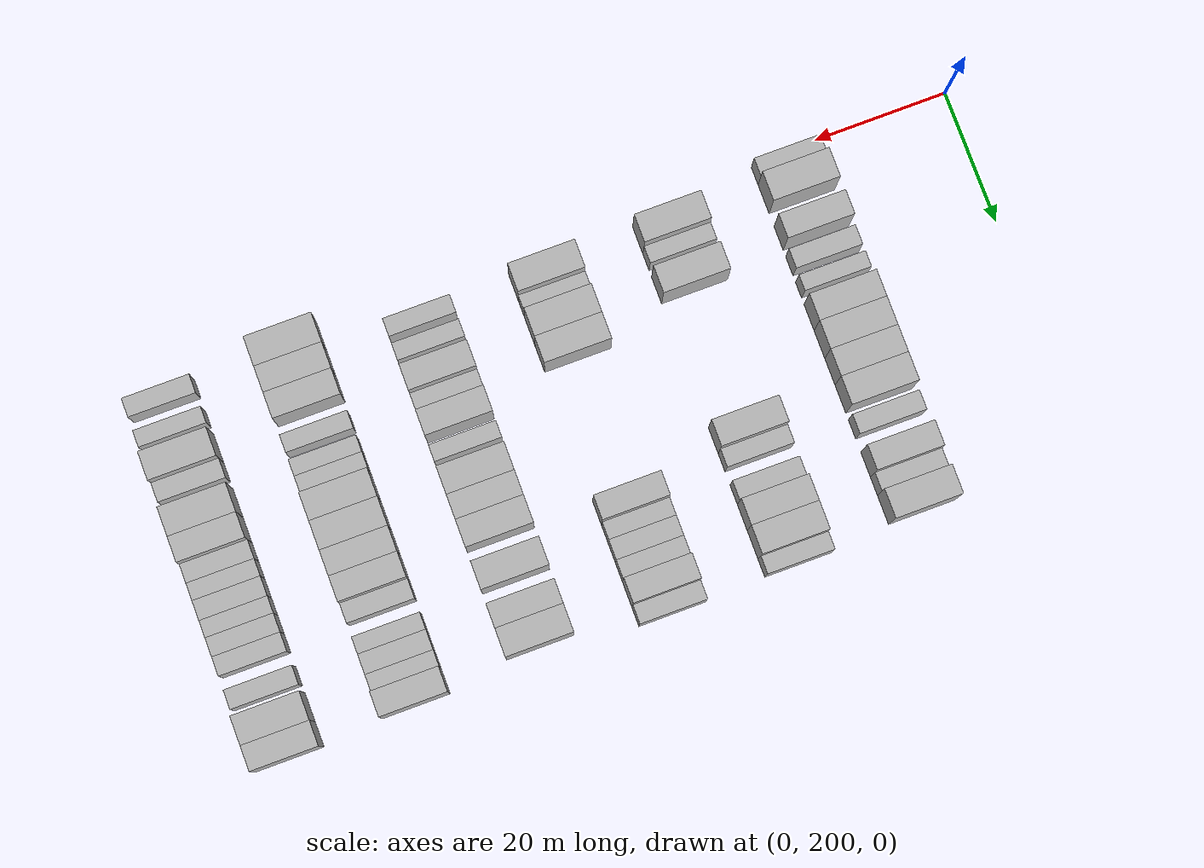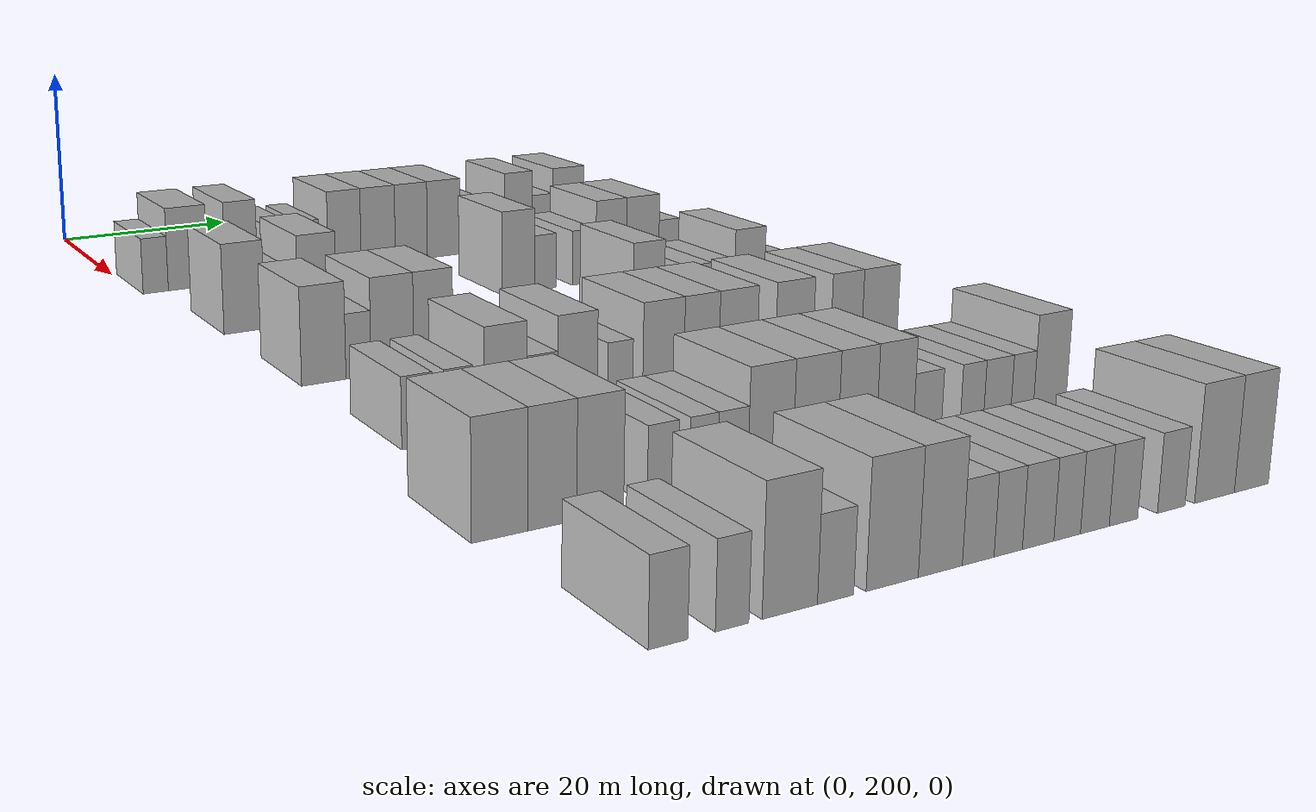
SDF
<sdf version="1.6">
 <world name="default">
  <model name="building_137">
   <static>1</static>
   <pose>25.0000 201.9260 0 0.000000 0.000000 0.000000</pose>
   <link name="link">
    <pose>0 0 3.00 0 0 0</pose>
    <collision name="collision"><geometry><box><size>10.0000 2.7533 6.0000</size></box></geometry></collision>
    <visual name="visual">
     <cast_shadows>0</cast_shadows>
     <geometry><box><size>10.0000 2.7533 6.0000</size></box></geometry>
     <material>
      <script>
       <uri>model://HANNAS_wall/materials/scripts</uri>
       <uri>model://HANNAS_wall/materials/textures</uri>
       <name>vrc/HANNAS_wall</name>
      </script>
     </material>
    </visual>
   </link>
  </model>
  <model name="building_138">
   <static>1</static>
   <pose>25.0000 205.5140 0 0.000000 0.000000 0.000000</pose>
   <link name="link">
    <pose>0 0 4.50 0 0 0</pose>
    <collision name="collision"><geometry><box><size>10.0000 4.4226 9.0000</size></box></geometry></collision>
    <visual name="visual">
     <cast_shadows>0</cast_shadows>
     <geometry><box><size>10.0000 4.4226 9.0000</size></box></geometry>
     <material>
      <script>
       <uri>model://HANNAS_wall/materials/scripts</uri>
       <uri>model://HANNAS_wall/materials/textures</uri>
       <name>vrc/HANNAS_wall</name>
      </script>
     </material>
    </visual>
   </link>
  </model>
  <model name="building_139">
   <static>1</static>
   <pose>25.0000 211.5642 0 0.000000 0.000000 0.000000</pose>
   <link name="link">
    <pose>0 0 4.50 0 0 0</pose>
    <collision name="collision"><geometry><box><size>10.0000 3.6777 9.0000</size></box></geometry></collision>
    <visual name="visual">
     <cast_shadows>0</cast_shadows>
     <geometry><box><size>10.0000 3.6777 9.0000</size></box></geometry>
     <material>
      <script>
       <uri>model://HANNAS_wall/materials/scripts</uri>
       <uri>model://HANNAS_wall/materials/textures</uri>
       <name>vrc/HANNAS_wall</name>
      </script>
     </material>
    </visual>
   </link>
  </model>
  <model name="building_140">
   <static>1</static>
   <pose>25.0000 215.8800 0 0.000000 0.000000 0.000000</pose>
   <link name="link">
    <pose>0 0 3.00 0 0 0</pose>
    <collision name="collision"><geometry><box><size>10.0000 2.9540 6.0000</size></box></geometry></collision>
    <visual name="visual">
     <cast_shadows>0</cast_shadows>
     <geometry><box><size>10.0000 2.9540 6.0000</size></box></geometry>
     <material>
      <script>
       <uri>model://HANNAS_wall/materials/scripts</uri>
       <uri>model://HANNAS_wall/materials/textures</uri>
       <name>vrc/HANNAS_wall</name>
      </script>
     </material>
    </visual>
   </link>
  </model>
  <model name="building_141">
   <static>1</static>
   <pose>25.0000 219.5652 0 0.000000 0.000000 0.000000</pose>
   <link name="link">
    <pose>0 0 3.00 0 0 0</pose>
    <collision name="collision"><geometry><box><size>10.0000 2.4164 6.0000</size></box></geometry></collision>
    <visual name="visual">
     <cast_shadows>0</cast_shadows>
     <geometry><box><size>10.0000 2.4164 6.0000</size></box></geometry>
     <material>
      <script>
       <uri>model://HANNAS_wall/materials/scripts</uri>
       <uri>model://HANNAS_wall/materials/textures</uri>
       <name>vrc/HANNAS_wall</name>
      </script>
     </material>
    </visual>
   </link>
  </model>
  <model name="building_142">
   <static>1</static>
   <pose>25.0000 223.7878 0 0.000000 0.000000 0.000000</pose>
   <link name="link">
    <pose>0 0 4.50 0 0 0</pose>
    <collision name="collision"><geometry><box><size>10.0000 4.0288 9.0000</size></box></geometry></collision>
    <visual name="visual">
     <cast_shadows>0</cast_shadows>
     <geometry><box><size>10.0000 4.0288 9.0000</size></box></geometry>
     <material>
      <script>
       <uri>model://HANNAS_wall/materials/scripts</uri>
       <uri>model://HANNAS_wall/materials/textures</uri>
       <name>vrc/HANNAS_wall</name>
      </script>
     </material>
    </visual>
   </link>
  </model>
  <model name="building_143">
   <static>1</static>
   <pose>25.0000 227.9310 0 0.000000 0.000000 0.000000</pose>
   <link name="link">
    <pose>0 0 4.50 0 0 0</pose>
    <collision name="collision"><geometry><box><size>10.0000 4.2576 9.0000</size></box></geometry></collision>
    <visual name="visual">
     <cast_shadows>0</cast_shadows>
     <geometry><box><size>10.0000 4.2576 9.0000</size></box></geometry>
     <material>
      <script>
       <uri>model://HANNAS_wall/materials/scripts</uri>
       <uri>model://HANNAS_wall/materials/textures</uri>
       <name>vrc/HANNAS_wall</name>
      </script>
     </material>
    </visual>
   </link>
  </model>
  <model name="building_144">
   <static>1</static>
   <pose>25.0000 232.0990 0 0.000000 0.000000 0.000000</pose>
   <link name="link">
    <pose>0 0 4.50 0 0 0</pose>
    <collision name="collision"><geometry><box><size>10.0000 4.0784 9.0000</size></box></geometry></collision>
    <visual name="visual">
     <cast_shadows>0</cast_shadows>
     <geometry><box><size>10.0000 4.0784 9.0000</size></box></geometry>
     <material>
      <script>
       <uri>model://HANNAS_wall/materials/scripts</uri>
       <uri>model://HANNAS_wall/materials/textures</uri>
       <name>vrc/HANNAS_wall</name>
      </script>
     </material>
    </visual>
   </link>
  </model>
  <model name="building_145">
   <static>1</static>
   <pose>25.0000 236.2634 0 0.000000 0.000000 0.000000</pose>
   <link name="link">
    <pose>0 0 4.50 0 0 0</pose>
    <collision name="collision"><geometry><box><size>10.0000 4.2503 9.0000</size></box></geometry></collision>
    <visual name="visual">
     <cast_shadows>0</cast_shadows>
     <geometry><box><size>10.0000 4.2503 9.0000</size></box></geometry>
     <material>
      <script>
       <uri>model://HANNAS_wall/materials/scripts</uri>
       <uri>model://HANNAS_wall/materials/textures</uri>
       <name>vrc/HANNAS_wall</name>
      </script>
     </material>
    </visual>
   </link>
  </model>
  <model name="building_146">
   <static>1</static>
   <pose>25.0000 240.8515 0 0.000000 0.000000 0.000000</pose>
   <link name="link">
    <pose>0 0 3.00 0 0 0</pose>
    <collision name="collision"><geometry><box><size>10.0000 2.9259 6.0000</size></box></geometry></collision>
    <visual name="visual">
     <cast_shadows>0</cast_shadows>
     <geometry><box><size>10.0000 2.9259 6.0000</size></box></geometry>
     <material>
      <script>
       <uri>model://HANNAS_wall/materials/scripts</uri>
       <uri>model://HANNAS_wall/materials/textures</uri>
       <name>vrc/HANNAS_wall</name>
      </script>
     </material>
    </visual>
   </link>
  </model>
  <model name="building_147">
   <static>1</static>
   <pose>25.0000 246.2009 0 0.000000 0.000000 0.000000</pose>
   <link name="link">
    <pose>0 0 4.50 0 0 0</pose>
    <collision name="collision"><geometry><box><size>10.0000 3.7731 9.0000</size></box></geometry></collision>
    <visual name="visual">
     <cast_shadows>0</cast_shadows>
     <geometry><box><size>10.0000 3.7731 9.0000</size></box></geometry>
     <material>
      <script>
       <uri>model://HANNAS_wall/materials/scripts</uri>
       <uri>model://HANNAS_wall/materials/textures</uri>
       <name>vrc/HANNAS_wall</name>
      </script>
     </material>
    </visual>
   </link>
  </model>
  <model name="building_148">
   <static>1</static>
   <pose>25.0000 249.4696 0 0.000000 0.000000 0.000000</pose>
   <link name="link">
    <pose>0 0 3.00 0 0 0</pose>
    <collision name="collision"><geometry><box><size>10.0000 2.7642 6.0000</size></box></geometry></collision>
    <visual name="visual">
     <cast_shadows>0</cast_shadows>
     <geometry><box><size>10.0000 2.7642 6.0000</size></box></geometry>
     <material>
      <script>
       <uri>model://HANNAS_wall/materials/scripts</uri>
       <uri>model://HANNAS_wall/materials/textures</uri>
       <name>vrc/HANNAS_wall</name>
      </script>
     </material>
    </visual>
   </link>
  </model>
  <model name="building_149">
   <static>1</static>
   <pose>25.0000 253.0398 0 0.000000 0.000000 0.000000</pose>
   <link name="link">
    <pose>0 0 4.50 0 0 0</pose>
    <collision name="collision"><geometry><box><size>10.0000 4.3762 9.0000</size></box></geometry></collision>
    <visual name="visual">
     <cast_shadows>0</cast_shadows>
     <geometry><box><size>10.0000 4.3762 9.0000</size></box></geometry>
     <material>
      <script>
       <uri>model://HANNAS_wall/materials/scripts</uri>
       <uri>model://HANNAS_wall/materials/textures</uri>
       <name>vrc/HANNAS_wall</name>
      </script>
     </material>
    </visual>
   </link>
  </model>
  <model name="building_309">
   <static>1</static>
   <pose>44.0000 204.9392 0 0.000000 0.000000 0.000000</pose>
   <link name="link">
    <pose>0 0 4.50 0 0 0</pose>
    <collision name="collision"><geometry><box><size>10.0000 4.1954 9.0000</size></box></geometry></collision>
    <visual name="visual">
     <cast_shadows>0</cast_shadows>
     <geometry><box><size>10.0000 4.1954 9.0000</size></box></geometry>
     <material>
      <script>
       <uri>model://HANNAS_wall/materials/scripts</uri>
       <uri>model://HANNAS_wall/materials/textures</uri>
       <name>vrc/HANNAS_wall</name>
      </script>
     </material>
    </visual>
   </link>
  </model>
  <model name="building_310">
   <static>1</static>
   <pose>44.0000 208.3051 0 0.000000 0.000000 0.000000</pose>
   <link name="link">
    <pose>0 0 3.00 0 0 0</pose>
    <collision name="collision"><geometry><box><size>10.0000 2.5364 6.0000</size></box></geometry></collision>
    <visual name="visual">
     <cast_shadows>0</cast_shadows>
     <geometry><box><size>10.0000 2.5364 6.0000</size></box></geometry>
     <material>
      <script>
       <uri>model://HANNAS_wall/materials/scripts</uri>
       <uri>model://HANNAS_wall/materials/textures</uri>
       <name>vrc/HANNAS_wall</name>
      </script>
     </material>
    </visual>
   </link>
  </model>
  <model name="building_311">
   <static>1</static>
   <pose>44.0000 212.6256 0 0.000000 0.000000 0.000000</pose>
   <link name="link">
    <pose>0 0 4.50 0 0 0</pose>
    <collision name="collision"><geometry><box><size>10.0000 4.1047 9.0000</size></box></geometry></collision>
    <visual name="visual">
     <cast_shadows>0</cast_shadows>
     <geometry><box><size>10.0000 4.1047 9.0000</size></box></geometry>
     <material>
      <script>
       <uri>model://HANNAS_wall/materials/scripts</uri>
       <uri>model://HANNAS_wall/materials/textures</uri>
       <name>vrc/HANNAS_wall</name>
      </script>
     </material>
    </visual>
   </link>
  </model>
  <model name="building_312">
   <static>1</static>
   <pose>44.0000 235.6013 0 0.000000 0.000000 0.000000</pose>
   <link name="link">
    <pose>0 0 4.50 0 0 0</pose>
    <collision name="collision"><geometry><box><size>10.0000 3.9489 9.0000</size></box></geometry></collision>
    <visual name="visual">
     <cast_shadows>0</cast_shadows>
     <geometry><box><size>10.0000 3.9489 9.0000</size></box></geometry>
     <material>
      <script>
       <uri>model://HANNAS_wall/materials/scripts</uri>
       <uri>model://HANNAS_wall/materials/textures</uri>
       <name>vrc/HANNAS_wall</name>
      </script>
     </material>
    </visual>
   </link>
  </model>
  <model name="building_313">
   <static>1</static>
   <pose>44.0000 238.9459 0 0.000000 0.000000 0.000000</pose>
   <link name="link">
    <pose>0 0 3.00 0 0 0</pose>
    <collision name="collision"><geometry><box><size>10.0000 2.7405 6.0000</size></box></geometry></collision>
    <visual name="visual">
     <cast_shadows>0</cast_shadows>
     <geometry><box><size>10.0000 2.7405 6.0000</size></box></geometry>
     <material>
      <script>
       <uri>model://HANNAS_wall/materials/scripts</uri>
       <uri>model://HANNAS_wall/materials/textures</uri>
       <name>vrc/HANNAS_wall</name>
      </script>
     </material>
    </visual>
   </link>
  </model>
  <model name="building_314">
   <static>1</static>
   <pose>44.0000 243.8032 0 0.000000 0.000000 0.000000</pose>
   <link name="link">
    <pose>0 0 3.00 0 0 0</pose>
    <collision name="collision"><geometry><box><size>10.0000 2.9741 6.0000</size></box></geometry></collision>
    <visual name="visual">
     <cast_shadows>0</cast_shadows>
     <geometry><box><size>10.0000 2.9741 6.0000</size></box></geometry>
     <material>
      <script>
       <uri>model://HANNAS_wall/materials/scripts</uri>
       <uri>model://HANNAS_wall/materials/textures</uri>
       <name>vrc/HANNAS_wall</name>
      </script>
     </material>
    </visual>
   </link>
  </model>
  <model name="building_315">
   <static>1</static>
   <pose>44.0000 247.2576 0 0.000000 0.000000 0.000000</pose>
   <link name="link">
    <pose>0 0 4.50 0 0 0</pose>
    <collision name="collision"><geometry><box><size>10.0000 3.9348 9.0000</size></box></geometry></collision>
    <visual name="visual">
     <cast_shadows>0</cast_shadows>
     <geometry><box><size>10.0000 3.9348 9.0000</size></box></geometry>
     <material>
      <script>
       <uri>model://HANNAS_wall/materials/scripts</uri>
       <uri>model://HANNAS_wall/materials/textures</uri>
       <name>vrc/HANNAS_wall</name>
      </script>
     </material>
    </visual>
   </link>
  </model>
  <model name="building_316">
   <static>1</static>
   <pose>44.0000 251.3628 0 0.000000 0.000000 0.000000</pose>
   <link name="link">
    <pose>0 0 4.50 0 0 0</pose>
    <collision name="collision"><geometry><box><size>10.0000 4.2755 9.0000</size></box></geometry></collision>
    <visual name="visual">
     <cast_shadows>0</cast_shadows>
     <geometry><box><size>10.0000 4.2755 9.0000</size></box></geometry>
     <material>
      <script>
       <uri>model://HANNAS_wall/materials/scripts</uri>
       <uri>model://HANNAS_wall/materials/textures</uri>
       <name>vrc/HANNAS_wall</name>
      </script>
     </material>
    </visual>
   </link>
  </model>
  <model name="building_317">
   <static>1</static>
   <pose>44.0000 254.8335 0 0.000000 0.000000 0.000000</pose>
   <link name="link">
    <pose>0 0 3.00 0 0 0</pose>
    <collision name="collision"><geometry><box><size>10.0000 2.6660 6.0000</size></box></geometry></collision>
    <visual name="visual">
     <cast_shadows>0</cast_shadows>
     <geometry><box><size>10.0000 2.6660 6.0000</size></box></geometry>
     <material>
      <script>
       <uri>model://HANNAS_wall/materials/scripts</uri>
       <uri>model://HANNAS_wall/materials/textures</uri>
       <name>vrc/HANNAS_wall</name>
      </script>
     </material>
    </visual>
   </link>
  </model>
  <model name="building_474">
   <static>1</static>
   <pose>63.0000 205.3788 0 0.000000 0.000000 0.000000</pose>
   <link name="link">
    <pose>0 0 4.50 0 0 0</pose>
    <collision name="collision"><geometry><box><size>10.0000 4.2287 9.0000</size></box></geometry></collision>
    <visual name="visual">
     <cast_shadows>0</cast_shadows>
     <geometry><box><size>10.0000 4.2287 9.0000</size></box></geometry>
     <material>
      <script>
       <uri>model://HANNAS_wall/materials/scripts</uri>
       <uri>model://HANNAS_wall/materials/textures</uri>
       <name>vrc/HANNAS_wall</name>
      </script>
     </material>
    </visual>
   </link>
  </model>
  <model name="building_475">
   <static>1</static>
   <pose>63.0000 208.7192 0 0.000000 0.000000 0.000000</pose>
   <link name="link">
    <pose>0 0 3.00 0 0 0</pose>
    <collision name="collision"><geometry><box><size>10.0000 2.4522 6.0000</size></box></geometry></collision>
    <visual name="visual">
     <cast_shadows>0</cast_shadows>
     <geometry><box><size>10.0000 2.4522 6.0000</size></box></geometry>
     <material>
      <script>
       <uri>model://HANNAS_wall/materials/scripts</uri>
       <uri>model://HANNAS_wall/materials/textures</uri>
       <name>vrc/HANNAS_wall</name>
      </script>
     </material>
    </visual>
   </link>
  </model>
  <model name="building_476">
   <static>1</static>
   <pose>63.0000 212.0709 0 0.000000 0.000000 0.000000</pose>
   <link name="link">
    <pose>0 0 4.50 0 0 0</pose>
    <collision name="collision"><geometry><box><size>10.0000 4.2512 9.0000</size></box></geometry></collision>
    <visual name="visual">
     <cast_shadows>0</cast_shadows>
     <geometry><box><size>10.0000 4.2512 9.0000</size></box></geometry>
     <material>
      <script>
       <uri>model://HANNAS_wall/materials/scripts</uri>
       <uri>model://HANNAS_wall/materials/textures</uri>
       <name>vrc/HANNAS_wall</name>
      </script>
     </material>
    </visual>
   </link>
  </model>
  <model name="building_477">
   <static>1</static>
   <pose>63.0000 216.1887 0 0.000000 0.000000 0.000000</pose>
   <link name="link">
    <pose>0 0 4.50 0 0 0</pose>
    <collision name="collision"><geometry><box><size>10.0000 3.9843 9.0000</size></box></geometry></collision>
    <visual name="visual">
     <cast_shadows>0</cast_shadows>
     <geometry><box><size>10.0000 3.9843 9.0000</size></box></geometry>
     <material>
      <script>
       <uri>model://HANNAS_wall/materials/scripts</uri>
       <uri>model://HANNAS_wall/materials/textures</uri>
       <name>vrc/HANNAS_wall</name>
      </script>
     </material>
    </visual>
   </link>
  </model>
  <model name="building_478">
   <static>1</static>
   <pose>63.0000 239.6455 0 0.000000 0.000000 0.000000</pose>
   <link name="link">
    <pose>0 0 4.50 0 0 0</pose>
    <collision name="collision"><geometry><box><size>10.0000 3.6432 9.0000</size></box></geometry></collision>
    <visual name="visual">
     <cast_shadows>0</cast_shadows>
     <geometry><box><size>10.0000 3.6432 9.0000</size></box></geometry>
     <material>
      <script>
       <uri>model://HANNAS_wall/materials/scripts</uri>
       <uri>model://HANNAS_wall/materials/textures</uri>
       <name>vrc/HANNAS_wall</name>
      </script>
     </material>
    </visual>
   </link>
  </model>
  <model name="building_479">
   <static>1</static>
   <pose>63.0000 242.7793 0 0.000000 0.000000 0.000000</pose>
   <link name="link">
    <pose>0 0 3.00 0 0 0</pose>
    <collision name="collision"><geometry><box><size>10.0000 2.6244 6.0000</size></box></geometry></collision>
    <visual name="visual">
     <cast_shadows>0</cast_shadows>
     <geometry><box><size>10.0000 2.6244 6.0000</size></box></geometry>
     <material>
      <script>
       <uri>model://HANNAS_wall/materials/scripts</uri>
       <uri>model://HANNAS_wall/materials/textures</uri>
       <name>vrc/HANNAS_wall</name>
      </script>
     </material>
    </visual>
   </link>
  </model>
  <model name="building_480">
   <static>1</static>
   <pose>63.0000 245.5914 0 0.000000 0.000000 0.000000</pose>
   <link name="link">
    <pose>0 0 3.00 0 0 0</pose>
    <collision name="collision"><geometry><box><size>10.0000 2.9997 6.0000</size></box></geometry></collision>
    <visual name="visual">
     <cast_shadows>0</cast_shadows>
     <geometry><box><size>10.0000 2.9997 6.0000</size></box></geometry>
     <material>
      <script>
       <uri>model://HANNAS_wall/materials/scripts</uri>
       <uri>model://HANNAS_wall/materials/textures</uri>
       <name>vrc/HANNAS_wall</name>
      </script>
     </material>
    </visual>
   </link>
  </model>
  <model name="building_481">
   <static>1</static>
   <pose>63.0000 248.5118 0 0.000000 0.000000 0.000000</pose>
   <link name="link">
    <pose>0 0 3.00 0 0 0</pose>
    <collision name="collision"><geometry><box><size>10.0000 2.8411 6.0000</size></box></geometry></collision>
    <visual name="visual">
     <cast_shadows>0</cast_shadows>
     <geometry><box><size>10.0000 2.8411 6.0000</size></box></geometry>
     <material>
      <script>
       <uri>model://HANNAS_wall/materials/scripts</uri>
       <uri>model://HANNAS_wall/materials/textures</uri>
       <name>vrc/HANNAS_wall</name>
      </script>
     </material>
    </visual>
   </link>
  </model>
  <model name="building_482">
   <static>1</static>
   <pose>63.0000 251.8137 0 0.000000 0.000000 0.000000</pose>
   <link name="link">
    <pose>0 0 4.50 0 0 0</pose>
    <collision name="collision"><geometry><box><size>10.0000 3.7629 9.0000</size></box></geometry></collision>
    <visual name="visual">
     <cast_shadows>0</cast_shadows>
     <geometry><box><size>10.0000 3.7629 9.0000</size></box></geometry>
     <material>
      <script>
       <uri>model://HANNAS_wall/materials/scripts</uri>
       <uri>model://HANNAS_wall/materials/textures</uri>
       <name>vrc/HANNAS_wall</name>
      </script>
     </material>
    </visual>
   </link>
  </model>
  <model name="building_483">
   <static>1</static>
   <pose>63.0000 255.1217 0 0.000000 0.000000 0.000000</pose>
   <link name="link">
    <pose>0 0 3.00 0 0 0</pose>
    <collision name="collision"><geometry><box><size>10.0000 2.8530 6.0000</size></box></geometry></collision>
    <visual name="visual">
     <cast_shadows>0</cast_shadows>
     <geometry><box><size>10.0000 2.8530 6.0000</size></box></geometry>
     <material>
      <script>
       <uri>model://HANNAS_wall/materials/scripts</uri>
       <uri>model://HANNAS_wall/materials/textures</uri>
       <name>vrc/HANNAS_wall</name>
      </script>
     </material>
    </visual>
   </link>
  </model>
  <model name="building_650">
   <static>1</static>
   <pose>82.0000 205.3810 0 0.000000 0.000000 0.000000</pose>
   <link name="link">
    <pose>0 0 3.00 0 0 0</pose>
    <collision name="collision"><geometry><box><size>10.0000 2.7140 6.0000</size></box></geometry></collision>
    <visual name="visual">
     <cast_shadows>0</cast_shadows>
     <geometry><box><size>10.0000 2.7140 6.0000</size></box></geometry>
     <material>
      <script>
       <uri>model://HANNAS_wall/materials/scripts</uri>
       <uri>model://HANNAS_wall/materials/textures</uri>
       <name>vrc/HANNAS_wall</name>
      </script>
     </material>
    </visual>
   </link>
  </model>
  <model name="building_651">
   <static>1</static>
   <pose>82.0000 209.0442 0 0.000000 0.000000 0.000000</pose>
   <link name="link">
    <pose>0 0 3.00 0 0 0</pose>
    <collision name="collision"><geometry><box><size>10.0000 2.6124 6.0000</size></box></geometry></collision>
    <visual name="visual">
     <cast_shadows>0</cast_shadows>
     <geometry><box><size>10.0000 2.6124 6.0000</size></box></geometry>
     <material>
      <script>
       <uri>model://HANNAS_wall/materials/scripts</uri>
       <uri>model://HANNAS_wall/materials/textures</uri>
       <name>vrc/HANNAS_wall</name>
      </script>
     </material>
    </visual>
   </link>
  </model>
  <model name="building_652">
   <static>1</static>
   <pose>82.0000 213.3233 0 0.000000 0.000000 0.000000</pose>
   <link name="link">
    <pose>0 0 4.50 0 0 0</pose>
    <collision name="collision"><geometry><box><size>10.0000 3.9457 9.0000</size></box></geometry></collision>
    <visual name="visual">
     <cast_shadows>0</cast_shadows>
     <geometry><box><size>10.0000 3.9457 9.0000</size></box></geometry>
     <material>
      <script>
       <uri>model://HANNAS_wall/materials/scripts</uri>
       <uri>model://HANNAS_wall/materials/textures</uri>
       <name>vrc/HANNAS_wall</name>
      </script>
     </material>
    </visual>
   </link>
  </model>
  <model name="building_653">
   <static>1</static>
   <pose>82.0000 216.7306 0 0.000000 0.000000 0.000000</pose>
   <link name="link">
    <pose>0 0 3.00 0 0 0</pose>
    <collision name="collision"><geometry><box><size>10.0000 2.8688 6.0000</size></box></geometry></collision>
    <visual name="visual">
     <cast_shadows>0</cast_shadows>
     <geometry><box><size>10.0000 2.8688 6.0000</size></box></geometry>
     <material>
      <script>
       <uri>model://HANNAS_wall/materials/scripts</uri>
       <uri>model://HANNAS_wall/materials/textures</uri>
       <name>vrc/HANNAS_wall</name>
      </script>
     </material>
    </visual>
   </link>
  </model>
  <model name="building_654">
   <static>1</static>
   <pose>82.0000 220.0925 0 0.000000 0.000000 0.000000</pose>
   <link name="link">
    <pose>0 0 4.50 0 0 0</pose>
    <collision name="collision"><geometry><box><size>10.0000 3.8549 9.0000</size></box></geometry></collision>
    <visual name="visual">
     <cast_shadows>0</cast_shadows>
     <geometry><box><size>10.0000 3.8549 9.0000</size></box></geometry>
     <material>
      <script>
       <uri>model://HANNAS_wall/materials/scripts</uri>
       <uri>model://HANNAS_wall/materials/textures</uri>
       <name>vrc/HANNAS_wall</name>
      </script>
     </material>
    </visual>
   </link>
  </model>
  <model name="building_655">
   <static>1</static>
   <pose>82.0000 224.2745 0 0.000000 0.000000 0.000000</pose>
   <link name="link">
    <pose>0 0 3.00 0 0 0</pose>
    <collision name="collision"><geometry><box><size>10.0000 2.5092 6.0000</size></box></geometry></collision>
    <visual name="visual">
     <cast_shadows>0</cast_shadows>
     <geometry><box><size>10.0000 2.5092 6.0000</size></box></geometry>
     <material>
      <script>
       <uri>model://HANNAS_wall/materials/scripts</uri>
       <uri>model://HANNAS_wall/materials/textures</uri>
       <name>vrc/HANNAS_wall</name>
      </script>
     </material>
    </visual>
   </link>
  </model>
  <model name="building_656">
   <static>1</static>
   <pose>82.0000 228.6297 0 0.000000 0.000000 0.000000</pose>
   <link name="link">
    <pose>0 0 4.50 0 0 0</pose>
    <collision name="collision"><geometry><box><size>10.0000 4.2011 9.0000</size></box></geometry></collision>
    <visual name="visual">
     <cast_shadows>0</cast_shadows>
     <geometry><box><size>10.0000 4.2011 9.0000</size></box></geometry>
     <material>
      <script>
       <uri>model://HANNAS_wall/materials/scripts</uri>
       <uri>model://HANNAS_wall/materials/textures</uri>
       <name>vrc/HANNAS_wall</name>
      </script>
     </material>
    </visual>
   </link>
  </model>
  <model name="building_657">
   <static>1</static>
   <pose>82.0000 232.5625 0 0.000000 0.000000 0.000000</pose>
   <link name="link">
    <pose>0 0 4.50 0 0 0</pose>
    <collision name="collision"><geometry><box><size>10.0000 3.6646 9.0000</size></box></geometry></collision>
    <visual name="visual">
     <cast_shadows>0</cast_shadows>
     <geometry><box><size>10.0000 3.6646 9.0000</size></box></geometry>
     <material>
      <script>
       <uri>model://HANNAS_wall/materials/scripts</uri>
       <uri>model://HANNAS_wall/materials/textures</uri>
       <name>vrc/HANNAS_wall</name>
      </script>
     </material>
    </visual>
   </link>
  </model>
  <model name="building_658">
   <static>1</static>
   <pose>82.0000 236.4537 0 0.000000 0.000000 0.000000</pose>
   <link name="link">
    <pose>0 0 4.50 0 0 0</pose>
    <collision name="collision"><geometry><box><size>10.0000 4.1177 9.0000</size></box></geometry></collision>
    <visual name="visual">
     <cast_shadows>0</cast_shadows>
     <geometry><box><size>10.0000 4.1177 9.0000</size></box></geometry>
     <material>
      <script>
       <uri>model://HANNAS_wall/materials/scripts</uri>
       <uri>model://HANNAS_wall/materials/textures</uri>
       <name>vrc/HANNAS_wall</name>
      </script>
     </material>
    </visual>
   </link>
  </model>
  <model name="building_659">
   <static>1</static>
   <pose>82.0000 242.6173 0 0.000000 0.000000 0.000000</pose>
   <link name="link">
    <pose>0 0 4.50 0 0 0</pose>
    <collision name="collision"><geometry><box><size>10.0000 4.2096 9.0000</size></box></geometry></collision>
    <visual name="visual">
     <cast_shadows>0</cast_shadows>
     <geometry><box><size>10.0000 4.2096 9.0000</size></box></geometry>
     <material>
      <script>
       <uri>model://HANNAS_wall/materials/scripts</uri>
       <uri>model://HANNAS_wall/materials/textures</uri>
       <name>vrc/HANNAS_wall</name>
      </script>
     </material>
    </visual>
   </link>
  </model>
  <model name="building_660">
   <static>1</static>
   <pose>82.0000 248.5293 0 0.000000 0.000000 0.000000</pose>
   <link name="link">
    <pose>0 0 4.50 0 0 0</pose>
    <collision name="collision"><geometry><box><size>10.0000 3.6144 9.0000</size></box></geometry></collision>
    <visual name="visual">
     <cast_shadows>0</cast_shadows>
     <geometry><box><size>10.0000 3.6144 9.0000</size></box></geometry>
     <material>
      <script>
       <uri>model://HANNAS_wall/materials/scripts</uri>
       <uri>model://HANNAS_wall/materials/textures</uri>
       <name>vrc/HANNAS_wall</name>
      </script>
     </material>
    </visual>
   </link>
  </model>
  <model name="building_661">
   <static>1</static>
   <pose>82.0000 252.4435 0 0.000000 0.000000 0.000000</pose>
   <link name="link">
    <pose>0 0 4.50 0 0 0</pose>
    <collision name="collision"><geometry><box><size>10.0000 4.2139 9.0000</size></box></geometry></collision>
    <visual name="visual">
     <cast_shadows>0</cast_shadows>
     <geometry><box><size>10.0000 4.2139 9.0000</size></box></geometry>
     <material>
      <script>
       <uri>model://HANNAS_wall/materials/scripts</uri>
       <uri>model://HANNAS_wall/materials/textures</uri>
       <name>vrc/HANNAS_wall</name>
      </script>
     </material>
    </visual>
   </link>
  </model>
  <model name="building_821">
   <static>1</static>
   <pose>101.0000 202.4897 0 0.000000 0.000000 0.000000</pose>
   <link name="link">
    <pose>0 0 4.50 0 0 0</pose>
    <collision name="collision"><geometry><box><size>10.0000 4.4217 9.0000</size></box></geometry></collision>
    <visual name="visual">
     <cast_shadows>0</cast_shadows>
     <geometry><box><size>10.0000 4.4217 9.0000</size></box></geometry>
     <material>
      <script>
       <uri>model://HANNAS_wall/materials/scripts</uri>
       <uri>model://HANNAS_wall/materials/textures</uri>
       <name>vrc/HANNAS_wall</name>
      </script>
     </material>
    </visual>
   </link>
  </model>
  <model name="building_822">
   <static>1</static>
   <pose>101.0000 206.6573 0 0.000000 0.000000 0.000000</pose>
   <link name="link">
    <pose>0 0 4.50 0 0 0</pose>
    <collision name="collision"><geometry><box><size>10.0000 3.9134 9.0000</size></box></geometry></collision>
    <visual name="visual">
     <cast_shadows>0</cast_shadows>
     <geometry><box><size>10.0000 3.9134 9.0000</size></box></geometry>
     <material>
      <script>
       <uri>model://HANNAS_wall/materials/scripts</uri>
       <uri>model://HANNAS_wall/materials/textures</uri>
       <name>vrc/HANNAS_wall</name>
      </script>
     </material>
    </visual>
   </link>
  </model>
  <model name="building_823">
   <static>1</static>
   <pose>101.0000 210.5640 0 0.000000 0.000000 0.000000</pose>
   <link name="link">
    <pose>0 0 4.50 0 0 0</pose>
    <collision name="collision"><geometry><box><size>10.0000 3.9001 9.0000</size></box></geometry></collision>
    <visual name="visual">
     <cast_shadows>0</cast_shadows>
     <geometry><box><size>10.0000 3.9001 9.0000</size></box></geometry>
     <material>
      <script>
       <uri>model://HANNAS_wall/materials/scripts</uri>
       <uri>model://HANNAS_wall/materials/textures</uri>
       <name>vrc/HANNAS_wall</name>
      </script>
     </material>
    </visual>
   </link>
  </model>
  <model name="building_824">
   <static>1</static>
   <pose>101.0000 215.8510 0 0.000000 0.000000 0.000000</pose>
   <link name="link">
    <pose>0 0 3.00 0 0 0</pose>
    <collision name="collision"><geometry><box><size>10.0000 2.6738 6.0000</size></box></geometry></collision>
    <visual name="visual">
     <cast_shadows>0</cast_shadows>
     <geometry><box><size>10.0000 2.6738 6.0000</size></box></geometry>
     <material>
      <script>
       <uri>model://HANNAS_wall/materials/scripts</uri>
       <uri>model://HANNAS_wall/materials/textures</uri>
       <name>vrc/HANNAS_wall</name>
      </script>
     </material>
    </visual>
   </link>
  </model>
  <model name="building_825">
   <static>1</static>
   <pose>101.0000 219.4406 0 0.000000 0.000000 0.000000</pose>
   <link name="link">
    <pose>0 0 3.00 0 0 0</pose>
    <collision name="collision"><geometry><box><size>10.0000 2.5055 6.0000</size></box></geometry></collision>
    <visual name="visual">
     <cast_shadows>0</cast_shadows>
     <geometry><box><size>10.0000 2.5055 6.0000</size></box></geometry>
     <material>
      <script>
       <uri>model://HANNAS_wall/materials/scripts</uri>
       <uri>model://HANNAS_wall/materials/textures</uri>
       <name>vrc/HANNAS_wall</name>
      </script>
     </material>
    </visual>
   </link>
  </model>
  <model name="building_826">
   <static>1</static>
   <pose>101.0000 222.0585 0 0.000000 0.000000 0.000000</pose>
   <link name="link">
    <pose>0 0 3.00 0 0 0</pose>
    <collision name="collision"><geometry><box><size>10.0000 2.7303 6.0000</size></box></geometry></collision>
    <visual name="visual">
     <cast_shadows>0</cast_shadows>
     <geometry><box><size>10.0000 2.7303 6.0000</size></box></geometry>
     <material>
      <script>
       <uri>model://HANNAS_wall/materials/scripts</uri>
       <uri>model://HANNAS_wall/materials/textures</uri>
       <name>vrc/HANNAS_wall</name>
      </script>
     </material>
    </visual>
   </link>
  </model>
  <model name="building_827">
   <static>1</static>
   <pose>101.0000 225.5257 0 0.000000 0.000000 0.000000</pose>
   <link name="link">
    <pose>0 0 4.50 0 0 0</pose>
    <collision name="collision"><geometry><box><size>10.0000 4.2040 9.0000</size></box></geometry></collision>
    <visual name="visual">
     <cast_shadows>0</cast_shadows>
     <geometry><box><size>10.0000 4.2040 9.0000</size></box></geometry>
     <material>
      <script>
       <uri>model://HANNAS_wall/materials/scripts</uri>
       <uri>model://HANNAS_wall/materials/textures</uri>
       <name>vrc/HANNAS_wall</name>
      </script>
     </material>
    </visual>
   </link>
  </model>
  <model name="building_828">
   <static>1</static>
   <pose>101.0000 229.7828 0 0.000000 0.000000 0.000000</pose>
   <link name="link">
    <pose>0 0 4.50 0 0 0</pose>
    <collision name="collision"><geometry><box><size>10.0000 4.3103 9.0000</size></box></geometry></collision>
    <visual name="visual">
     <cast_shadows>0</cast_shadows>
     <geometry><box><size>10.0000 4.3103 9.0000</size></box></geometry>
     <material>
      <script>
       <uri>model://HANNAS_wall/materials/scripts</uri>
       <uri>model://HANNAS_wall/materials/textures</uri>
       <name>vrc/HANNAS_wall</name>
      </script>
     </material>
    </visual>
   </link>
  </model>
  <model name="building_829">
   <static>1</static>
   <pose>101.0000 233.8326 0 0.000000 0.000000 0.000000</pose>
   <link name="link">
    <pose>0 0 4.50 0 0 0</pose>
    <collision name="collision"><geometry><box><size>10.0000 3.7893 9.0000</size></box></geometry></collision>
    <visual name="visual">
     <cast_shadows>0</cast_shadows>
     <geometry><box><size>10.0000 3.7893 9.0000</size></box></geometry>
     <material>
      <script>
       <uri>model://HANNAS_wall/materials/scripts</uri>
       <uri>model://HANNAS_wall/materials/textures</uri>
       <name>vrc/HANNAS_wall</name>
      </script>
     </material>
    </visual>
   </link>
  </model>
  <model name="building_830">
   <static>1</static>
   <pose>101.0000 237.6186 0 0.000000 0.000000 0.000000</pose>
   <link name="link">
    <pose>0 0 4.50 0 0 0</pose>
    <collision name="collision"><geometry><box><size>10.0000 3.7828 9.0000</size></box></geometry></collision>
    <visual name="visual">
     <cast_shadows>0</cast_shadows>
     <geometry><box><size>10.0000 3.7828 9.0000</size></box></geometry>
     <material>
      <script>
       <uri>model://HANNAS_wall/materials/scripts</uri>
       <uri>model://HANNAS_wall/materials/textures</uri>
       <name>vrc/HANNAS_wall</name>
      </script>
     </material>
    </visual>
   </link>
  </model>
  <model name="building_831">
   <static>1</static>
   <pose>101.0000 240.9843 0 0.000000 0.000000 0.000000</pose>
   <link name="link">
    <pose>0 0 3.00 0 0 0</pose>
    <collision name="collision"><geometry><box><size>10.0000 2.9487 6.0000</size></box></geometry></collision>
    <visual name="visual">
     <cast_shadows>0</cast_shadows>
     <geometry><box><size>10.0000 2.9487 6.0000</size></box></geometry>
     <material>
      <script>
       <uri>model://HANNAS_wall/materials/scripts</uri>
       <uri>model://HANNAS_wall/materials/textures</uri>
       <name>vrc/HANNAS_wall</name>
      </script>
     </material>
    </visual>
   </link>
  </model>
  <model name="building_832">
   <static>1</static>
   <pose>101.0000 245.7186 0 0.000000 0.000000 0.000000</pose>
   <link name="link">
    <pose>0 0 3.00 0 0 0</pose>
    <collision name="collision"><geometry><box><size>10.0000 2.5198 6.0000</size></box></geometry></collision>
    <visual name="visual">
     <cast_shadows>0</cast_shadows>
     <geometry><box><size>10.0000 2.5198 6.0000</size></box></geometry>
     <material>
      <script>
       <uri>model://HANNAS_wall/materials/scripts</uri>
       <uri>model://HANNAS_wall/materials/textures</uri>
       <name>vrc/HANNAS_wall</name>
      </script>
     </material>
    </visual>
   </link>
  </model>
  <model name="building_833">
   <static>1</static>
   <pose>101.0000 248.4756 0 0.000000 0.000000 0.000000</pose>
   <link name="link">
    <pose>0 0 3.00 0 0 0</pose>
    <collision name="collision"><geometry><box><size>10.0000 2.9943 6.0000</size></box></geometry></collision>
    <visual name="visual">
     <cast_shadows>0</cast_shadows>
     <geometry><box><size>10.0000 2.9943 6.0000</size></box></geometry>
     <material>
      <script>
       <uri>model://HANNAS_wall/materials/scripts</uri>
       <uri>model://HANNAS_wall/materials/textures</uri>
       <name>vrc/HANNAS_wall</name>
      </script>
     </material>
    </visual>
   </link>
  </model>
  <model name="building_834">
   <static>1</static>
   <pose>101.0000 251.2364 0 0.000000 0.000000 0.000000</pose>
   <link name="link">
    <pose>0 0 3.00 0 0 0</pose>
    <collision name="collision"><geometry><box><size>10.0000 2.5273 6.0000</size></box></geometry></collision>
    <visual name="visual">
     <cast_shadows>0</cast_shadows>
     <geometry><box><size>10.0000 2.5273 6.0000</size></box></geometry>
     <material>
      <script>
       <uri>model://HANNAS_wall/materials/scripts</uri>
       <uri>model://HANNAS_wall/materials/textures</uri>
       <name>vrc/HANNAS_wall</name>
      </script>
     </material>
    </visual>
   </link>
  </model>
  <model name="building_835">
   <static>1</static>
   <pose>101.0000 254.3720 0 0.000000 0.000000 0.000000</pose>
   <link name="link">
    <pose>0 0 4.50 0 0 0</pose>
    <collision name="collision"><geometry><box><size>10.0000 3.7439 9.0000</size></box></geometry></collision>
    <visual name="visual">
     <cast_shadows>0</cast_shadows>
     <geometry><box><size>10.0000 3.7439 9.0000</size></box></geometry>
     <material>
      <script>
       <uri>model://HANNAS_wall/materials/scripts</uri>
       <uri>model://HANNAS_wall/materials/textures</uri>
       <name>vrc/HANNAS_wall</name>
      </script>
     </material>
    </visual>
   </link>
  </model>
  <model name="building_997">
   <static>1</static>
   <pose>120.0000 203.4984 0 0.000000 0.000000 0.000000</pose>
   <link name="link">
    <pose>0 0 3.00 0 0 0</pose>
    <collision name="collision"><geometry><box><size>10.0000 2.8230 6.0000</size></box></geometry></collision>
    <visual name="visual">
     <cast_shadows>0</cast_shadows>
     <geometry><box><size>10.0000 2.8230 6.0000</size></box></geometry>
     <material>
      <script>
       <uri>model://HANNAS_wall/materials/scripts</uri>
       <uri>model://HANNAS_wall/materials/textures</uri>
       <name>vrc/HANNAS_wall</name>
      </script>
     </material>
    </visual>
   </link>
  </model>
  <model name="building_998">
   <static>1</static>
   <pose>120.0000 208.1583 0 0.000000 0.000000 0.000000</pose>
   <link name="link">
    <pose>0 0 3.00 0 0 0</pose>
    <collision name="collision"><geometry><box><size>10.0000 2.4968 6.0000</size></box></geometry></collision>
    <visual name="visual">
     <cast_shadows>0</cast_shadows>
     <geometry><box><size>10.0000 2.4968 6.0000</size></box></geometry>
     <material>
      <script>
       <uri>model://HANNAS_wall/materials/scripts</uri>
       <uri>model://HANNAS_wall/materials/textures</uri>
       <name>vrc/HANNAS_wall</name>
      </script>
     </material>
    </visual>
   </link>
  </model>
  <model name="building_999">
   <static>1</static>
   <pose>120.0000 212.5489 0 0.000000 0.000000 0.000000</pose>
   <link name="link">
    <pose>0 0 4.50 0 0 0</pose>
    <collision name="collision"><geometry><box><size>10.0000 4.2843 9.0000</size></box></geometry></collision>
    <visual name="visual">
     <cast_shadows>0</cast_shadows>
     <geometry><box><size>10.0000 4.2843 9.0000</size></box></geometry>
     <material>
      <script>
       <uri>model://HANNAS_wall/materials/scripts</uri>
       <uri>model://HANNAS_wall/materials/textures</uri>
       <name>vrc/HANNAS_wall</name>
      </script>
     </material>
    </visual>
   </link>
  </model>
  <model name="building_1000">
   <static>1</static>
   <pose>120.0000 216.1427 0 0.000000 0.000000 0.000000</pose>
   <link name="link">
    <pose>0 0 3.00 0 0 0</pose>
    <collision name="collision"><geometry><box><size>10.0000 2.9033 6.0000</size></box></geometry></collision>
    <visual name="visual">
     <cast_shadows>0</cast_shadows>
     <geometry><box><size>10.0000 2.9033 6.0000</size></box></geometry>
     <material>
      <script>
       <uri>model://HANNAS_wall/materials/scripts</uri>
       <uri>model://HANNAS_wall/materials/textures</uri>
       <name>vrc/HANNAS_wall</name>
      </script>
     </material>
    </visual>
   </link>
  </model>
  <model name="building_1001">
   <static>1</static>
   <pose>120.0000 220.7713 0 0.000000 0.000000 0.000000</pose>
   <link name="link">
    <pose>0 0 4.50 0 0 0</pose>
    <collision name="collision"><geometry><box><size>10.0000 4.3540 9.0000</size></box></geometry></collision>
    <visual name="visual">
     <cast_shadows>0</cast_shadows>
     <geometry><box><size>10.0000 4.3540 9.0000</size></box></geometry>
     <material>
      <script>
       <uri>model://HANNAS_wall/materials/scripts</uri>
       <uri>model://HANNAS_wall/materials/textures</uri>
       <name>vrc/HANNAS_wall</name>
      </script>
     </material>
    </visual>
   </link>
  </model>
  <model name="building_1002">
   <static>1</static>
   <pose>120.0000 224.8502 0 0.000000 0.000000 0.000000</pose>
   <link name="link">
    <pose>0 0 4.50 0 0 0</pose>
    <collision name="collision"><geometry><box><size>10.0000 3.8037 9.0000</size></box></geometry></collision>
    <visual name="visual">
     <cast_shadows>0</cast_shadows>
     <geometry><box><size>10.0000 3.8037 9.0000</size></box></geometry>
     <material>
      <script>
       <uri>model://HANNAS_wall/materials/scripts</uri>
       <uri>model://HANNAS_wall/materials/textures</uri>
       <name>vrc/HANNAS_wall</name>
      </script>
     </material>
    </visual>
   </link>
  </model>
  <model name="building_1003">
   <static>1</static>
   <pose>120.0000 228.1614 0 0.000000 0.000000 0.000000</pose>
   <link name="link">
    <pose>0 0 3.00 0 0 0</pose>
    <collision name="collision"><geometry><box><size>10.0000 2.8186 6.0000</size></box></geometry></collision>
    <visual name="visual">
     <cast_shadows>0</cast_shadows>
     <geometry><box><size>10.0000 2.8186 6.0000</size></box></geometry>
     <material>
      <script>
       <uri>model://HANNAS_wall/materials/scripts</uri>
       <uri>model://HANNAS_wall/materials/textures</uri>
       <name>vrc/HANNAS_wall</name>
      </script>
     </material>
    </visual>
   </link>
  </model>
  <model name="building_1004">
   <static>1</static>
   <pose>120.0000 230.8585 0 0.000000 0.000000 0.000000</pose>
   <link name="link">
    <pose>0 0 3.00 0 0 0</pose>
    <collision name="collision"><geometry><box><size>10.0000 2.5758 6.0000</size></box></geometry></collision>
    <visual name="visual">
     <cast_shadows>0</cast_shadows>
     <geometry><box><size>10.0000 2.5758 6.0000</size></box></geometry>
     <material>
      <script>
       <uri>model://HANNAS_wall/materials/scripts</uri>
       <uri>model://HANNAS_wall/materials/textures</uri>
       <name>vrc/HANNAS_wall</name>
      </script>
     </material>
    </visual>
   </link>
  </model>
  <model name="building_1005">
   <static>1</static>
   <pose>120.0000 233.6097 0 0.000000 0.000000 0.000000</pose>
   <link name="link">
    <pose>0 0 3.00 0 0 0</pose>
    <collision name="collision"><geometry><box><size>10.0000 2.9266 6.0000</size></box></geometry></collision>
    <visual name="visual">
     <cast_shadows>0</cast_shadows>
     <geometry><box><size>10.0000 2.9266 6.0000</size></box></geometry>
     <material>
      <script>
       <uri>model://HANNAS_wall/materials/scripts</uri>
       <uri>model://HANNAS_wall/materials/textures</uri>
       <name>vrc/HANNAS_wall</name>
      </script>
     </material>
    </visual>
   </link>
  </model>
  <model name="building_1006">
   <static>1</static>
   <pose>120.0000 236.3385 0 0.000000 0.000000 0.000000</pose>
   <link name="link">
    <pose>0 0 3.00 0 0 0</pose>
    <collision name="collision"><geometry><box><size>10.0000 2.5311 6.0000</size></box></geometry></collision>
    <visual name="visual">
     <cast_shadows>0</cast_shadows>
     <geometry><box><size>10.0000 2.5311 6.0000</size></box></geometry>
     <material>
      <script>
       <uri>model://HANNAS_wall/materials/scripts</uri>
       <uri>model://HANNAS_wall/materials/textures</uri>
       <name>vrc/HANNAS_wall</name>
      </script>
     </material>
    </visual>
   </link>
  </model>
  <model name="building_1007">
   <static>1</static>
   <pose>120.0000 239.0013 0 0.000000 0.000000 0.000000</pose>
   <link name="link">
    <pose>0 0 3.00 0 0 0</pose>
    <collision name="collision"><geometry><box><size>10.0000 2.7943 6.0000</size></box></geometry></collision>
    <visual name="visual">
     <cast_shadows>0</cast_shadows>
     <geometry><box><size>10.0000 2.7943 6.0000</size></box></geometry>
     <material>
      <script>
       <uri>model://HANNAS_wall/materials/scripts</uri>
       <uri>model://HANNAS_wall/materials/textures</uri>
       <name>vrc/HANNAS_wall</name>
      </script>
     </material>
    </visual>
   </link>
  </model>
  <model name="building_1008">
   <static>1</static>
   <pose>120.0000 241.8171 0 0.000000 0.000000 0.000000</pose>
   <link name="link">
    <pose>0 0 3.00 0 0 0</pose>
    <collision name="collision"><geometry><box><size>10.0000 2.8372 6.0000</size></box></geometry></collision>
    <visual name="visual">
     <cast_shadows>0</cast_shadows>
     <geometry><box><size>10.0000 2.8372 6.0000</size></box></geometry>
     <material>
      <script>
       <uri>model://HANNAS_wall/materials/scripts</uri>
       <uri>model://HANNAS_wall/materials/textures</uri>
       <name>vrc/HANNAS_wall</name>
      </script>
     </material>
    </visual>
   </link>
  </model>
  <model name="building_1009">
   <static>1</static>
   <pose>120.0000 246.6631 0 0.000000 0.000000 0.000000</pose>
   <link name="link">
    <pose>0 0 3.00 0 0 0</pose>
    <collision name="collision"><geometry><box><size>10.0000 2.8548 6.0000</size></box></geometry></collision>
    <visual name="visual">
     <cast_shadows>0</cast_shadows>
     <geometry><box><size>10.0000 2.8548 6.0000</size></box></geometry>
     <material>
      <script>
       <uri>model://HANNAS_wall/materials/scripts</uri>
       <uri>model://HANNAS_wall/materials/textures</uri>
       <name>vrc/HANNAS_wall</name>
      </script>
     </material>
    </visual>
   </link>
  </model>
  <model name="building_1010">
   <static>1</static>
   <pose>120.0000 251.2227 0 0.000000 0.000000 0.000000</pose>
   <link name="link">
    <pose>0 0 4.50 0 0 0</pose>
    <collision name="collision"><geometry><box><size>10.0000 4.2644 9.0000</size></box></geometry></collision>
    <visual name="visual">
     <cast_shadows>0</cast_shadows>
     <geometry><box><size>10.0000 4.2644 9.0000</size></box></geometry>
     <material>
      <script>
       <uri>model://HANNAS_wall/materials/scripts</uri>
       <uri>model://HANNAS_wall/materials/textures</uri>
       <name>vrc/HANNAS_wall</name>
      </script>
     </material>
    </visual>
   </link>
  </model>
  <model name="building_1011">
   <static>1</static>
   <pose>120.0000 255.2297 0 0.000000 0.000000 0.000000</pose>
   <link name="link">
    <pose>0 0 4.50 0 0 0</pose>
    <collision name="collision"><geometry><box><size>10.0000 3.7496 9.0000</size></box></geometry></collision>
    <visual name="visual">
     <cast_shadows>0</cast_shadows>
     <geometry><box><size>10.0000 3.7496 9.0000</size></box></geometry>
     <material>
      <script>
       <uri>model://HANNAS_wall/materials/scripts</uri>
       <uri>model://HANNAS_wall/materials/textures</uri>
       <name>vrc/HANNAS_wall</name>
      </script>
     </material>
    </visual>
   </link>
  </model>
 </world>
</sdf>
